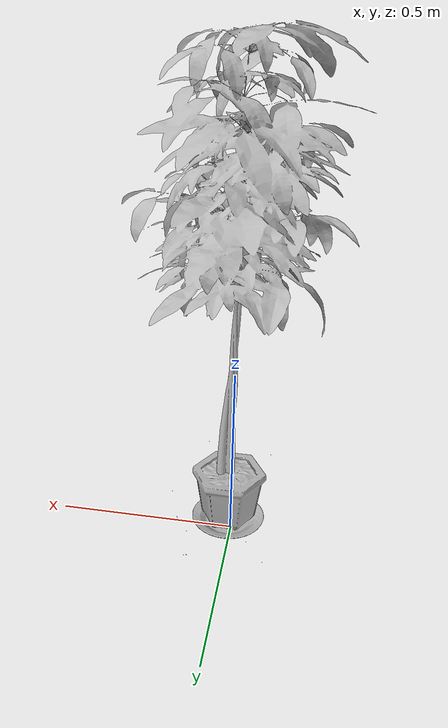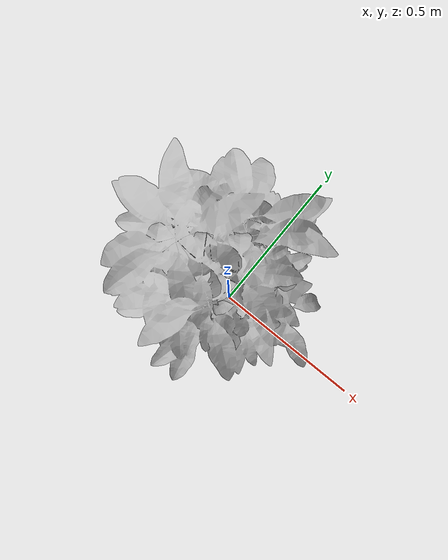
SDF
<sdf version='1.5'>
  <!-- Draw Model -->
  <model name="indoor_plant">
    <static>true</static>
    <link name="indoor_plant">
      <collision name="collision">
        <geometry>
          <mesh>
            <uri>model://indoor_plant/meshes/STL/indoor_plant.stl</uri>
          </mesh>
        </geometry>
      </collision>

      <visual name="visual">
        <geometry>
          <mesh>
            <uri>model://indoor_plant/meshes/DAE/indoor_plant.dae</uri>
          </mesh>
        </geometry>
      </visual>
    </link>
  </model>
</sdf>
